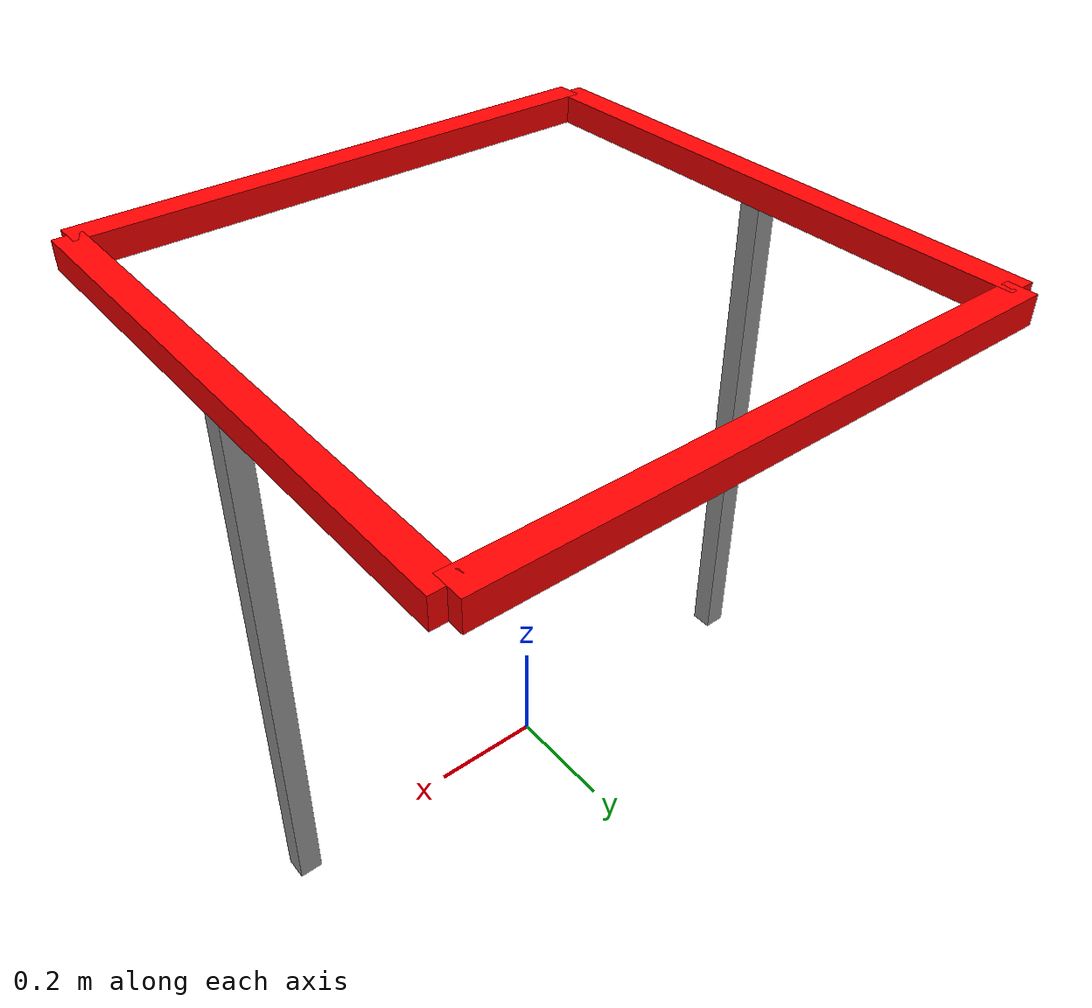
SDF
<?xml version='1.0'?>
<sdf version='1.7'>
  <model name='obstaclehighesthorizontal'>
    <link name='link'>
      <inertial>
        <mass>1</mass>
        <inertia>
          <ixx>0.166667</ixx>
          <ixy>0</ixy>
          <ixz>0</ixz>
          <iyy>0.166667</iyy>
          <iyz>0</iyz>
          <izz>0.166667</izz>
        </inertia>
        <pose>0 0 0 0 -0 0</pose>
      </inertial>
      <self_collide>0</self_collide>
      <enable_wind>0</enable_wind>
      <kinematic>0</kinematic>
      <pose>0 0 0.5 0 -0 0</pose>
      <gravity>1</gravity>
      <visual name='ModelPreview_1::link::visual_4'>
        <geometry>
          <box>
            <size>0.05 1 0.05</size>
          </box>
        </geometry>
        <material>
          <script>
            <name>Gazebo/Grey</name>
            <uri>file://media/materials/scripts/gazebo.material</uri>
          </script>
          <shader type='pixel'>
            <normal_map>__default__</normal_map>
          </shader>
          <ambient>1 0 1 1</ambient>
          <diffuse>1 0 0 1</diffuse>
          <specular>0.01 0.01 0.01 1</specular>
          <emissive>0 0 0 1</emissive>
        </material>
        <pose>0.5 0 0.5 0 -0 0</pose>
        <transparency>0</transparency>
        <cast_shadows>1</cast_shadows>
      </visual>
      <visual name='ModelPreview_1::link::visual_5'>
        <geometry>
          <box>
            <size>0.05 1 0.05</size>
          </box>
        </geometry>
        <material>
          <script>
            <name>Gazebo/Grey</name>
            <uri>file://media/materials/scripts/gazebo.material</uri>
          </script>
          <shader type='pixel'>
            <normal_map>__default__</normal_map>
          </shader>
          <ambient>1 0 1 1</ambient>
          <diffuse>1 0 0 1</diffuse>
          <specular>0.01 0.01 0.01 1</specular>
          <emissive>0 0 0 1</emissive>
        </material>
        <pose>-0.5 0 0.5 0 -0 0</pose>
        <transparency>0</transparency>
        <cast_shadows>1</cast_shadows>
      </visual>
      <visual name='ModelPreview_1::link::visual_3'>
        <geometry>
          <box>
            <size>1 0.05 0.05</size>
          </box>
        </geometry>
        <material>
          <script>
            <name>Gazebo/Grey</name>
            <uri>file://media/materials/scripts/gazebo.material</uri>
          </script>
          <shader type='pixel'>
            <normal_map>__default__</normal_map>
          </shader>
          <ambient>1 0 1 1</ambient>
          <diffuse>1 0 0 1</diffuse>
          <specular>0.01 0.01 0.01 1</specular>
          <emissive>0 0 0 1</emissive>
        </material>
        <pose>0 -0.5 0.5 0 -0 0</pose>
        <transparency>0</transparency>
        <cast_shadows>1</cast_shadows>
      </visual>
      <visual name='ModelPreview_1::link::visual_2'>
        <geometry>
          <box>
            <size>0.04 0.04 1</size>
          </box>
        </geometry>
        <material>
          <script>
            <name>Gazebo/Grey</name>
            <uri>file://media/materials/scripts/gazebo.material</uri>
          </script>
          <shader type='pixel'>
            <normal_map>__default__</normal_map>
          </shader>
          <ambient>1 1 1 1</ambient>
          <diffuse>0 0 0 1</diffuse>
          <specular>0.01 0.01 0.01 1</specular>
          <emissive>0 0 0 1</emissive>
        </material>
        <pose>-0.5 0 0 0 -0 0</pose>
        <transparency>0</transparency>
        <cast_shadows>1</cast_shadows>
      </visual>
      <visual name='visual'>
        <geometry>
          <box>
            <size>1 0.05 0.05</size>
          </box>
        </geometry>
        <material>
          <script>
            <name>Gazebo/Grey</name>
            <uri>file://media/materials/scripts/gazebo.material</uri>
          </script>
          <shader type='pixel'>
            <normal_map>__default__</normal_map>
          </shader>
          <ambient>1 0 1 1</ambient>
          <diffuse>1 0 0 1</diffuse>
          <specular>0.01 0.01 0.01 1</specular>
          <emissive>0 0 0 1</emissive>
        </material>
        <pose>0 0.5 0.5 0 -0 0</pose>
        <transparency>0</transparency>
        <cast_shadows>1</cast_shadows>
      </visual>
      <visual name='ModelPreview_1::link::visual_1'>
        <geometry>
          <box>
            <size>0.04 0.04 1</size>
          </box>
        </geometry>
        <material>
          <script>
            <name>Gazebo/Grey</name>
            <uri>file://media/materials/scripts/gazebo.material</uri>
          </script>
          <shader type='pixel'>
            <normal_map>__default__</normal_map>
          </shader>
          <ambient>1 1 1 1</ambient>
          <diffuse>0 0 0 1</diffuse>
          <specular>0.01 0.01 0.01 1</specular>
          <emissive>0 0 0 1</emissive>
        </material>
        <pose>0.5 0 0 0 -0 0</pose>
        <transparency>0</transparency>
        <cast_shadows>1</cast_shadows>
      </visual>
      <collision name='collision_1'>
        <laser_retro>0</laser_retro>
        <max_contacts>10</max_contacts>
        <pose>0.55 0 0 0 -0 0</pose>
        <geometry>
          <box>
            <size>0.1 0.1 1</size>
          </box>
        </geometry>
        <surface>
          <friction>
            <ode>
              <mu>1</mu>
              <mu2>1</mu2>
              <fdir1>0 0 0</fdir1>
              <slip1>0</slip1>
              <slip2>0</slip2>
            </ode>
            <torsional>
              <coefficient>1</coefficient>
              <patch_radius>0</patch_radius>
              <surface_radius>0</surface_radius>
              <use_patch_radius>1</use_patch_radius>
              <ode>
                <slip>0</slip>
              </ode>
            </torsional>
          </friction>
          <bounce>
            <restitution_coefficient>0</restitution_coefficient>
            <threshold>1e+06</threshold>
          </bounce>
          <contact>
            <collide_without_contact>0</collide_without_contact>
            <collide_without_contact_bitmask>1</collide_without_contact_bitmask>
            <collide_bitmask>1</collide_bitmask>
            <ode>
              <soft_cfm>0</soft_cfm>
              <soft_erp>0.2</soft_erp>
              <kp>1e+13</kp>
              <kd>1</kd>
              <max_vel>0.01</max_vel>
              <min_depth>0</min_depth>
            </ode>
            <bullet>
              <split_impulse>1</split_impulse>
              <split_impulse_penetration_threshold>-0.01</split_impulse_penetration_threshold>
              <soft_cfm>0</soft_cfm>
              <soft_erp>0.2</soft_erp>
              <kp>1e+13</kp>
              <kd>1</kd>
            </bullet>
          </contact>
        </surface>
      </collision>
      <collision name='collision_2'>
        <laser_retro>0</laser_retro>
        <max_contacts>10</max_contacts>
        <pose>-0.55 0 0 0 -0 0</pose>
        <geometry>
          <box>
            <size>0.1 0.1 1</size>
          </box>
        </geometry>
        <surface>
          <friction>
            <ode>
              <mu>1</mu>
              <mu2>1</mu2>
              <fdir1>0 0 0</fdir1>
              <slip1>0</slip1>
              <slip2>0</slip2>
            </ode>
            <torsional>
              <coefficient>1</coefficient>
              <patch_radius>0</patch_radius>
              <surface_radius>0</surface_radius>
              <use_patch_radius>1</use_patch_radius>
              <ode>
                <slip>0</slip>
              </ode>
            </torsional>
          </friction>
          <bounce>
            <restitution_coefficient>0</restitution_coefficient>
            <threshold>1e+06</threshold>
          </bounce>
          <contact>
            <collide_without_contact>0</collide_without_contact>
            <collide_without_contact_bitmask>1</collide_without_contact_bitmask>
            <collide_bitmask>1</collide_bitmask>
            <ode>
              <soft_cfm>0</soft_cfm>
              <soft_erp>0.2</soft_erp>
              <kp>1e+13</kp>
              <kd>1</kd>
              <max_vel>0.01</max_vel>
              <min_depth>0</min_depth>
            </ode>
            <bullet>
              <split_impulse>1</split_impulse>
              <split_impulse_penetration_threshold>-0.01</split_impulse_penetration_threshold>
              <soft_cfm>0</soft_cfm>
              <soft_erp>0.2</soft_erp>
              <kp>1e+13</kp>
              <kd>1</kd>
            </bullet>
          </contact>
        </surface>
      </collision>
    </link>
    <static>1</static>
    <allow_auto_disable>1</allow_auto_disable>
  </model>
</sdf>
